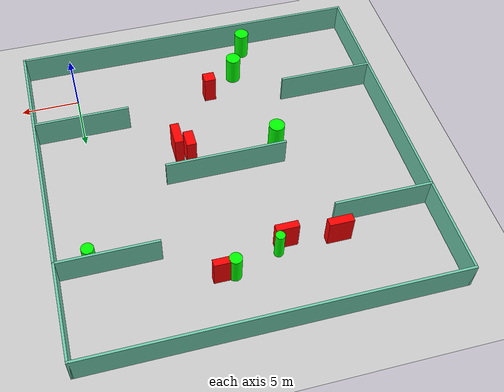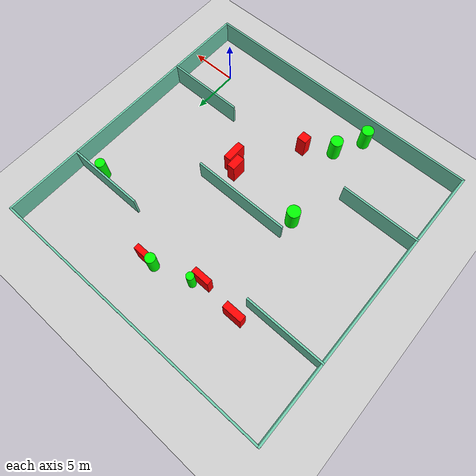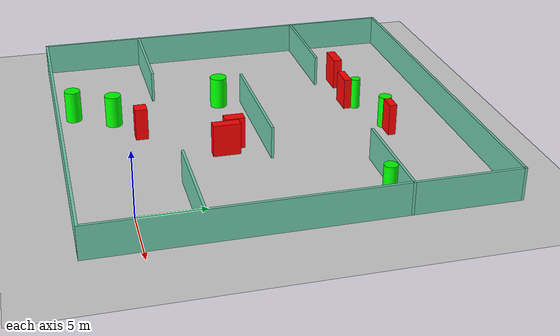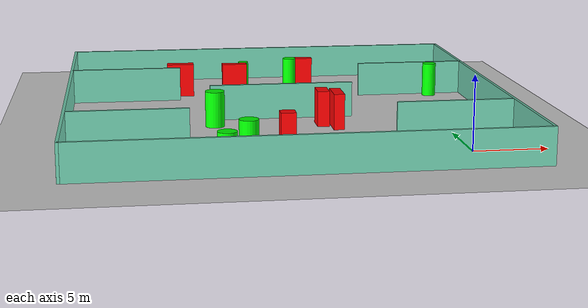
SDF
<sdf version="1.7">
 <world name="default">
  <light name="sun" type="directional">
   <pose>0 0 10 0 -0 0</pose>
   <diffuse>0.8 0.8 0.8 1</diffuse>
   <specular>0.2 0.2 0.2 1</specular>
   <attenuation>
    <range>1000</range>
    <constant>0.9</constant>
    <linear>0.01</linear>
    <quadratic>0.001</quadratic>
   </attenuation>
   <direction>-0.5 0.1 -0.9</direction>
   <spot><inner_angle>0</inner_angle><outer_angle>0</outer_angle><falloff>0</falloff></spot>
  </light>
  <model name="ground_plane">
   <static>1</static>
   <link name="link">
    <collision name="collision">
     <geometry><plane><normal>0 0 1</normal><size>100 100</size></plane></geometry>
     <surface>
      <contact><collide_bitmask>65535</collide_bitmask></contact>
      <friction><ode><mu>100</mu><mu2>50</mu2></ode></friction>
     </surface>
    </collision>
    <visual name="visual">
     <cast_shadows>0</cast_shadows>
     <geometry><plane><normal>0 0 1</normal><size>100 100</size></plane></geometry>
     <material>
      <script><uri>file://media/materials/scripts/gazebo.material</uri><name>Gazebo/Grey</name></script>
     </material>
    </visual>
   </link>
  </model>
  <gravity>0 0 -9.8</gravity>
  <magnetic_field>6e-06 2.3e-05 -4.2e-05</magnetic_field>
  <atmosphere type="adiabatic"/>
  <physics type="ode">
   <max_step_size>0.001</max_step_size>
   <real_time_factor>1</real_time_factor>
   <real_time_update_rate>1000</real_time_update_rate>
  </physics>
  <scene><ambient>0.4 0.4 0.4 1</ambient><background>0.7 0.7 0.7 1</background><shadows>1</shadows></scene>
  <spherical_coordinates>
   <surface_model>EARTH_WGS84</surface_model>
   <latitude_deg>0</latitude_deg>
   <longitude_deg>0</longitude_deg>
   <elevation>0</elevation>
   <heading_deg>0</heading_deg>
  </spherical_coordinates>
  <model name="my_base_walls">
   <link name="Wall_10">
    <collision name="Wall_10_Collision">
     <geometry><box><size>8.2 0.2 2.5</size></box></geometry>
     <pose>0 0 1.25 0 -0 0</pose>
    </collision>
    <visual name="Wall_10_Visual">
     <pose>0 0 1.25 0 -0 0</pose>
     <geometry><box><size>8.2 0.2 2.5</size></box></geometry>
     <material>
      <script><uri>file://media/materials/scripts/gazebo.material</uri><name>Gazebo/Grey</name></script>
      <ambient>0.435294 0.796078 0.67451 1</ambient>
     </material>
     <meta><layer>0</layer></meta>
    </visual>
    <pose>-11 -7 0 0 -0 0</pose>
   </link>
   <link name="Wall_12">
    <collision name="Wall_12_Collision">
     <geometry><box><size>8.2 0.2 2.5</size></box></geometry>
     <pose>0 0 1.25 0 -0 0</pose>
    </collision>
    <visual name="Wall_12_Visual">
     <pose>0 0 1.25 0 -0 0</pose>
     <geometry><box><size>8.2 0.2 2.5</size></box></geometry>
     <material>
      <script><uri>file://media/materials/scripts/gazebo.material</uri><name>Gazebo/Grey</name></script>
      <ambient>0.435294 0.796078 0.67451 1</ambient>
     </material>
     <meta><layer>0</layer></meta>
    </visual>
    <pose>-11 7 0 0 -0 0</pose>
   </link>
   <link name="Wall_14">
    <collision name="Wall_14_Collision">
     <geometry><box><size>8.2 0.2 2.5</size></box></geometry>
     <pose>0 0 1.25 0 -0 0</pose>
    </collision>
    <visual name="Wall_14_Visual">
     <pose>0 0 1.25 0 -0 0</pose>
     <geometry><box><size>8.2 0.2 2.5</size></box></geometry>
     <material>
      <script><uri>file://media/materials/scripts/gazebo.material</uri><name>Gazebo/Grey</name></script>
      <ambient>0.435294 0.796078 0.67451 1</ambient>
     </material>
     <meta><layer>0</layer></meta>
    </visual>
    <pose>11 7 0 0 -0 3.14159</pose>
   </link>
   <link name="Wall_16">
    <collision name="Wall_16_Collision">
     <geometry><box><size>10.2 0.2 2.5</size></box></geometry>
     <pose>0 0 1.25 0 -0 0</pose>
    </collision>
    <visual name="Wall_16_Visual">
     <pose>0 0 1.25 0 -0 0</pose>
     <geometry><box><size>10.2 0.2 2.5</size></box></geometry>
     <material>
      <script><uri>file://media/materials/scripts/gazebo.material</uri><name>Gazebo/Grey</name></script>
      <ambient>0.435294 0.796078 0.67451 1</ambient>
     </material>
     <meta><layer>0</layer></meta>
    </visual>
    <pose>0 0 0 0 -0 3.14159</pose>
   </link>
   <link name="Wall_2">
    <collision name="Wall_2_Collision">
     <geometry><box><size>30.2 0.2 2.5</size></box></geometry>
     <pose>0 0 1.25 0 -0 0</pose>
    </collision>
    <visual name="Wall_2_Visual">
     <pose>0 0 1.25 0 -0 0</pose>
     <geometry><box><size>30.2 0.2 2.5</size></box></geometry>
     <material>
      <script><uri>file://media/materials/scripts/gazebo.material</uri><name>Gazebo/Grey</name></script>
      <ambient>0.435294 0.796078 0.67451 1</ambient>
     </material>
     <meta><layer>0</layer></meta>
    </visual>
    <pose>0 -15 0 0 -0 3.14159</pose>
   </link>
   <link name="Wall_3">
    <collision name="Wall_3_Collision">
     <geometry><box><size>30.2 0.2 2.5</size></box></geometry>
     <pose>0 0 1.25 0 -0 0</pose>
    </collision>
    <visual name="Wall_3_Visual">
     <pose>0 0 1.25 0 -0 0</pose>
     <geometry><box><size>30.2 0.2 2.5</size></box></geometry>
     <material>
      <script><uri>file://media/materials/scripts/gazebo.material</uri><name>Gazebo/Grey</name></script>
      <ambient>0.435294 0.796078 0.67451 1</ambient>
     </material>
     <meta><layer>0</layer></meta>
    </visual>
    <pose>-15 0 0 0 -0 1.5708</pose>
   </link>
   <link name="Wall_4">
    <collision name="Wall_4_Collision">
     <geometry><box><size>30.2 0.2 2.5</size></box></geometry>
     <pose>0 0 1.25 0 -0 0</pose>
    </collision>
    <visual name="Wall_4_Visual">
     <pose>0 0 1.25 0 -0 0</pose>
     <geometry><box><size>30.2 0.2 2.5</size></box></geometry>
     <material>
      <script><uri>file://media/materials/scripts/gazebo.material</uri><name>Gazebo/Grey</name></script>
      <ambient>0.435294 0.796078 0.67451 1</ambient>
     </material>
     <meta><layer>0</layer></meta>
    </visual>
    <pose>0 15 0 0 -0 0</pose>
   </link>
   <link name="Wall_6">
    <collision name="Wall_6_Collision">
     <geometry><box><size>30.2 0.2 2.5</size></box></geometry>
     <pose>0 0 1.25 0 -0 0</pose>
    </collision>
    <visual name="Wall_6_Visual">
     <pose>0 0 1.25 0 -0 0</pose>
     <geometry><box><size>30.2 0.2 2.5</size></box></geometry>
     <material>
      <script><uri>file://media/materials/scripts/gazebo.material</uri><name>Gazebo/Grey</name></script>
      <ambient>0.435294 0.796078 0.67451 1</ambient>
     </material>
     <meta><layer>0</layer></meta>
    </visual>
    <pose>15 0 0 0 -0 1.5708</pose>
   </link>
   <link name="Wall_8">
    <collision name="Wall_8_Collision">
     <geometry><box><size>8.2 0.2 2.5</size></box></geometry>
     <pose>0 0 1.25 0 -0 0</pose>
    </collision>
    <visual name="Wall_8_Visual">
     <pose>0 0 1.25 0 -0 0</pose>
     <geometry><box><size>8.2 0.2 2.5</size></box></geometry>
     <material>
      <script><uri>file://media/materials/scripts/gazebo.material</uri><name>Gazebo/Grey</name></script>
      <ambient>0.435294 0.796078 0.67451 1</ambient>
     </material>
     <meta><layer>0</layer></meta>
    </visual>
    <pose>11 -7 0 0 -0 3.14159</pose>
   </link>
   <static>1</static>
   <pose>-11 11 0 0 -0 0</pose>
  </model>
  <model name="cylinder1">
   <static>1</static>
   <link name="link">
    <inertial>
     <mass>1</mass>
     <inertia><ixx>0.5</ixx><ixy>0</ixy><ixz>0</ixz><iyy>0.5</iyy><iyz>0</iyz><izz>1</izz></inertia>
    </inertial>
    <collision name="collision">
     <geometry><cylinder><radius>0.617107479044551</radius><length>2.5</length></cylinder></geometry>
    </collision>
    <visual name="visual">
     <geometry><cylinder><radius>0.617107479044551</radius><length>2.5</length></cylinder></geometry>
     <material>
      <ambient>0 1 0 1</ambient>
      <diffuse>0 1 0 1</diffuse>
      <specular>0.1 0.1 0.1 1</specular>
      <emissive>0 0 0 0</emissive>
     </material>
    </visual>
   </link>
   <pose>-15.985648835118148 -2.657641965333905 1.25 0 0 0</pose>
  </model>
  <model name="cylinder2">
   <static>1</static>
   <link name="link">
    <inertial>
     <mass>1</mass>
     <inertia><ixx>0.5</ixx><ixy>0</ixy><ixz>0</ixz><iyy>0.5</iyy><iyz>0</iyz><izz>1</izz></inertia>
    </inertial>
    <collision name="collision">
     <geometry><cylinder><radius>0.38535348859648644</radius><length>2.5</length></cylinder></geometry>
    </collision>
    <visual name="visual">
     <geometry><cylinder><radius>0.38535348859648644</radius><length>2.5</length></cylinder></geometry>
     <material>
      <ambient>0 1 0 1</ambient>
      <diffuse>0 1 0 1</diffuse>
      <specular>0.1 0.1 0.1 1</specular>
      <emissive>0 0 0 0</emissive>
     </material>
    </visual>
   </link>
   <pose>-12.909788886831599 19.788788527644403 1.25 0 0 0</pose>
  </model>
  <model name="cylinder3">
   <static>1</static>
   <link name="link">
    <inertial>
     <mass>1</mass>
     <inertia><ixx>0.5</ixx><ixy>0</ixy><ixz>0</ixz><iyy>0.5</iyy><iyz>0</iyz><izz>1</izz></inertia>
    </inertial>
    <collision name="collision">
     <geometry><cylinder><radius>0.5077971491174365</radius><length>2.5</length></cylinder></geometry>
    </collision>
    <visual name="visual">
     <geometry><cylinder><radius>0.5077971491174365</radius><length>2.5</length></cylinder></geometry>
     <material>
      <ambient>0 1 0 1</ambient>
      <diffuse>0 1 0 1</diffuse>
      <specular>0.1 0.1 0.1 1</specular>
      <emissive>0 0 0 0</emissive>
     </material>
    </visual>
   </link>
   <pose>-9.123145594708763 20.91174604753786 1.25 0 0 0</pose>
  </model>
  <model name="cylinder4">
   <static>1</static>
   <link name="link">
    <inertial>
     <mass>1</mass>
     <inertia><ixx>0.5</ixx><ixy>0</ixy><ixz>0</ixz><iyy>0.5</iyy><iyz>0</iyz><izz>1</izz></inertia>
    </inertial>
    <collision name="collision">
     <geometry><cylinder><radius>0.6671073261892831</radius><length>2.5</length></cylinder></geometry>
    </collision>
    <visual name="visual">
     <geometry><cylinder><radius>0.6671073261892831</radius><length>2.5</length></cylinder></geometry>
     <material>
      <ambient>0 1 0 1</ambient>
      <diffuse>0 1 0 1</diffuse>
      <specular>0.1 0.1 0.1 1</specular>
      <emissive>0 0 0 0</emissive>
     </material>
    </visual>
   </link>
   <pose>-15.892657128200295 9.068183842085636 1.25 0 0 0</pose>
  </model>
  <model name="cylinder5">
   <static>1</static>
   <link name="link">
    <inertial>
     <mass>1</mass>
     <inertia><ixx>0.5</ixx><ixy>0</ixy><ixz>0</ixz><iyy>0.5</iyy><iyz>0</iyz><izz>1</izz></inertia>
    </inertial>
    <collision name="collision">
     <geometry><cylinder><radius>0.6369449884787607</radius><length>2.5</length></cylinder></geometry>
    </collision>
    <visual name="visual">
     <geometry><cylinder><radius>0.6369449884787607</radius><length>2.5</length></cylinder></geometry>
     <material>
      <ambient>0 1 0 1</ambient>
      <diffuse>0 1 0 1</diffuse>
      <specular>0.1 0.1 0.1 1</specular>
      <emissive>0 0 0 0</emissive>
     </material>
    </visual>
   </link>
   <pose>-14.382613715835486 0.34094891172828357 1.25 0 0 0</pose>
  </model>
  <model name="cylinder6">
   <static>1</static>
   <link name="link">
    <inertial>
     <mass>1</mass>
     <inertia><ixx>0.5</ixx><ixy>0</ixy><ixz>0</ixz><iyy>0.5</iyy><iyz>0</iyz><izz>1</izz></inertia>
    </inertial>
    <collision name="collision">
     <geometry><cylinder><radius>0.5028334654313176</radius><length>2.5</length></cylinder></geometry>
    </collision>
    <visual name="visual">
     <geometry><cylinder><radius>0.5028334654313176</radius><length>2.5</length></cylinder></geometry>
     <material>
      <ambient>0 1 0 1</ambient>
      <diffuse>0 1 0 1</diffuse>
      <specular>0.1 0.1 0.1 1</specular>
      <emissive>0 0 0 0</emissive>
     </material>
    </visual>
   </link>
   <pose>1.3752894207065047 17.355052191375893 1.25 0 0 0</pose>
  </model>
  <model name="box1">
   <static>1</static>
   <link name="link">
    <inertial>
     <mass>1</mass>
     <inertia><ixx>0.083</ixx><ixy>0</ixy><ixz>0</ixz><iyy>0.083</iyy><iyz>0</iyz><izz>0.083</izz></inertia>
    </inertial>
    <collision name="collision">
     <geometry><box><size>1.000943831724162 0.9570531125698619 2.5</size></box></geometry>
    </collision>
    <visual name="visual">
     <geometry><box><size>1.000943831724162 0.9570531125698619 2.5</size></box></geometry>
     <material>
      <ambient>1 0 0 1</ambient>
      <diffuse>1 0 0 1</diffuse>
      <specular>0.1 0.1 0.1 1</specular>
      <emissive>0 0 0 0</emissive>
     </material>
    </visual>
    <sensor name="my_contact" type="contact">
     <contact><collision>box_collision</collision><topic>__default_topic__</topic></contact>
    </sensor>
   </link>
   <pose>-11.697556879170273 2.1206446110352255 1.25 0 0 0</pose>
  </model>
  <model name="box2">
   <static>1</static>
   <link name="link">
    <inertial>
     <mass>1</mass>
     <inertia><ixx>0.083</ixx><ixy>0</ixy><ixz>0</ixz><iyy>0.083</iyy><iyz>0</iyz><izz>0.083</izz></inertia>
    </inertial>
    <collision name="collision">
     <geometry><box><size>2.0137650332635593 0.6854018828926457 2.5</size></box></geometry>
    </collision>
    <visual name="visual">
     <geometry><box><size>2.0137650332635593 0.6854018828926457 2.5</size></box></geometry>
     <material>
      <ambient>1 0 0 1</ambient>
      <diffuse>1 0 0 1</diffuse>
      <specular>0.1 0.1 0.1 1</specular>
      <emissive>0 0 0 0</emissive>
     </material>
    </visual>
    <sensor name="my_contact" type="contact">
     <contact><collision>box_collision</collision><topic>__default_topic__</topic></contact>
    </sensor>
   </link>
   <pose>-17.814199289438296 19.585189257557097 1.25 0 0 0</pose>
  </model>
  <model name="box3">
   <static>1</static>
   <link name="link">
    <inertial>
     <mass>1</mass>
     <inertia><ixx>0.083</ixx><ixy>0</ixy><ixz>0</ixz><iyy>0.083</iyy><iyz>0</iyz><izz>0.083</izz></inertia>
    </inertial>
    <collision name="collision">
     <geometry><box><size>0.8295229701233775 1.528937347988825 2.5</size></box></geometry>
    </collision>
    <visual name="visual">
     <geometry><box><size>0.8295229701233775 1.528937347988825 2.5</size></box></geometry>
     <material>
      <ambient>1 0 0 1</ambient>
      <diffuse>1 0 0 1</diffuse>
      <specular>0.1 0.1 0.1 1</specular>
      <emissive>0 0 0 0</emissive>
     </material>
    </visual>
    <sensor name="my_contact" type="contact">
     <contact><collision>box_collision</collision><topic>__default_topic__</topic></contact>
    </sensor>
   </link>
   <pose>-8.426517288708489 8.668738148018745 1.25 0 0 0</pose>
  </model>
  <model name="box4">
   <static>1</static>
   <link name="link">
    <inertial>
     <mass>1</mass>
     <inertia><ixx>0.083</ixx><ixy>0</ixy><ixz>0</ixz><iyy>0.083</iyy><iyz>0</iyz><izz>0.083</izz></inertia>
    </inertial>
    <collision name="collision">
     <geometry><box><size>1.8692421578498961 0.5856365511291115 2.5</size></box></geometry>
    </collision>
    <visual name="visual">
     <geometry><box><size>1.8692421578498961 0.5856365511291115 2.5</size></box></geometry>
     <material>
      <ambient>1 0 0 1</ambient>
      <diffuse>1 0 0 1</diffuse>
      <specular>0.1 0.1 0.1 1</specular>
      <emissive>0 0 0 0</emissive>
     </material>
    </visual>
    <sensor name="my_contact" type="contact">
     <contact><collision>box_collision</collision><topic>__default_topic__</topic></contact>
    </sensor>
   </link>
   <pose>-13.664149302668177 19.100708121333497 1.25 0 0 0</pose>
  </model>
  <model name="box5">
   <static>1</static>
   <link name="link">
    <inertial>
     <mass>1</mass>
     <inertia><ixx>0.083</ixx><ixy>0</ixy><ixz>0</ixz><iyy>0.083</iyy><iyz>0</iyz><izz>0.083</izz></inertia>
    </inertial>
    <collision name="collision">
     <geometry><box><size>1.3199867109835894 0.5849011920588674 2.5</size></box></geometry>
    </collision>
    <visual name="visual">
     <geometry><box><size>1.3199867109835894 0.5849011920588674 2.5</size></box></geometry>
     <material>
      <ambient>1 0 0 1</ambient>
      <diffuse>1 0 0 1</diffuse>
      <specular>0.1 0.1 0.1 1</specular>
      <emissive>0 0 0 0</emissive>
     </material>
    </visual>
    <sensor name="my_contact" type="contact">
     <contact><collision>box_collision</collision><topic>__default_topic__</topic></contact>
    </sensor>
   </link>
   <pose>-8.033779923725554 20.915206670623878 1.25 0 0 0</pose>
  </model>
  <model name="box6">
   <static>1</static>
   <link name="link">
    <inertial>
     <mass>1</mass>
     <inertia><ixx>0.083</ixx><ixy>0</ixy><ixz>0</ixz><iyy>0.083</iyy><iyz>0</iyz><izz>0.083</izz></inertia>
    </inertial>
    <collision name="collision">
     <geometry><box><size>0.7407626604187669 2.079748305282363 2.5</size></box></geometry>
    </collision>
    <visual name="visual">
     <geometry><box><size>0.7407626604187669 2.079748305282363 2.5</size></box></geometry>
     <material>
      <ambient>1 0 0 1</ambient>
      <diffuse>1 0 0 1</diffuse>
      <specular>0.1 0.1 0.1 1</specular>
      <emissive>0 0 0 0</emissive>
     </material>
    </visual>
    <sensor name="my_contact" type="contact">
     <contact><collision>box_collision</collision><topic>__default_topic__</topic></contact>
    </sensor>
   </link>
   <pose>-7.505812327009096 7.866556049231013 1.25 0 0 0</pose>
  </model>
 </world>
</sdf>
